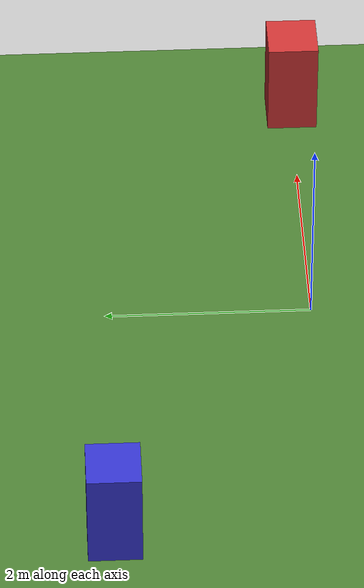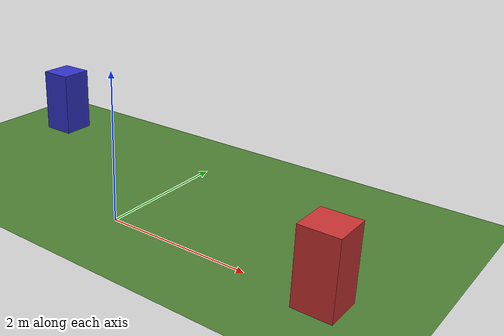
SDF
<?xml version="1.0" ?>
<!--
  AeroTerraBot Simulation World
  A flat terrain with physics tuned for both ground driving and quadrotor flight.
  Uses Gazebo Harmonic (gz-sim) SDF format.
-->
<sdf version="1.9">
  <world name="aeroterrabot_world">

    <!-- ── Physics ─────────────────────────────────────────────────────────── -->
    <physics name="default_physics" default="true" type="ode">
      <max_step_size>0.004</max_step_size>
      <real_time_factor>1.0</real_time_factor>
      <real_time_update_rate>250</real_time_update_rate>
    </physics>

    <!-- ── Plugins ──────────────────────────────────────────────────────────── -->
    <plugin filename="gz-sim-physics-system"
            name="gz::sim::systems::Physics"/>
    <plugin filename="gz-sim-sensors-system"
            name="gz::sim::systems::Sensors">
      <render_engine>ogre2</render_engine>
    </plugin>
    <plugin filename="gz-sim-scene-broadcaster-system"
            name="gz::sim::systems::SceneBroadcaster"/>
    <plugin filename="gz-sim-user-commands-system"
            name="gz::sim::systems::UserCommands"/>

    <!-- ── Lighting ─────────────────────────────────────────────────────────── -->
    <light name="sun" type="directional">
      <cast_shadows>true</cast_shadows>
      <pose>0 0 10 0 0 0</pose>
      <diffuse>0.9 0.9 0.9 1</diffuse>
      <specular>0.2 0.2 0.2 1</specular>
      <direction>-0.5 0.2 -0.9</direction>
    </light>

    <!-- ── Ground Plane ─────────────────────────────────────────────────────── -->
    <model name="ground_plane">
      <static>true</static>
      <link name="link">
        <collision name="collision">
          <geometry>
            <plane>
              <normal>0 0 1</normal>
              <size>100 100</size>
            </plane>
          </geometry>
          <surface>
            <friction>
              <ode>
                <mu>1.0</mu>
                <mu2>1.0</mu2>
              </ode>
            </friction>
          </surface>
        </collision>
        <visual name="visual">
          <cast_shadows>false</cast_shadows>
          <geometry>
            <plane>
              <normal>0 0 1</normal>
              <size>100 100</size>
            </plane>
          </geometry>
          <material>
            <ambient>0.3 0.5 0.2 1</ambient>
            <diffuse>0.3 0.5 0.2 1</diffuse>
          </material>
        </visual>
      </link>
    </model>

    <!-- ── Test Obstacles (for navigation/LiDAR testing) ────────────────────── -->
    <model name="box_obstacle_1">
      <static>true</static>
      <pose>3 0 0.5 0 0 0</pose>
      <link name="link">
        <collision name="collision">
          <geometry><box><size>0.5 0.5 1.0</size></box></geometry>
        </collision>
        <visual name="visual">
          <geometry><box><size>0.5 0.5 1.0</size></box></geometry>
          <material>
            <ambient>0.8 0.2 0.2 1</ambient>
            <diffuse>0.8 0.2 0.2 1</diffuse>
          </material>
        </visual>
      </link>
    </model>

    <model name="box_obstacle_2">
      <static>true</static>
      <pose>-3 2 0.5 0 0 0</pose>
      <link name="link">
        <collision name="collision">
          <geometry><box><size>0.5 0.5 1.0</size></box></geometry>
        </collision>
        <visual name="visual">
          <geometry><box><size>0.5 0.5 1.0</size></box></geometry>
          <material>
            <ambient>0.2 0.2 0.8 1</ambient>
            <diffuse>0.2 0.2 0.8 1</diffuse>
          </material>
        </visual>
      </link>
    </model>

  </world>
</sdf>
